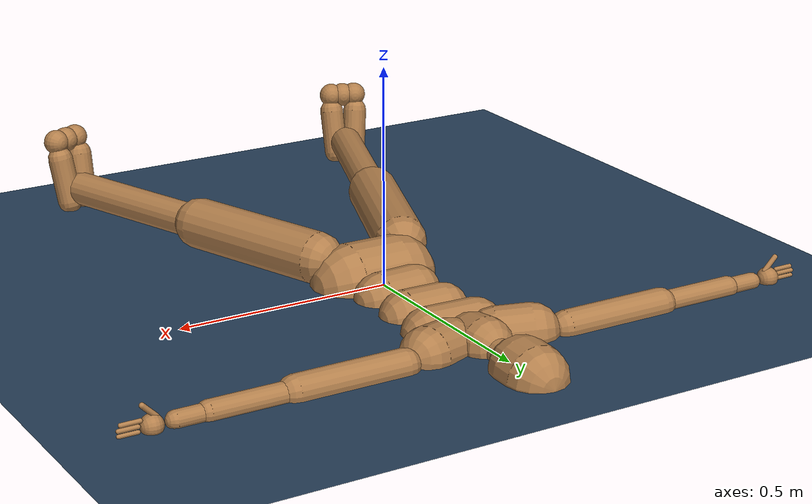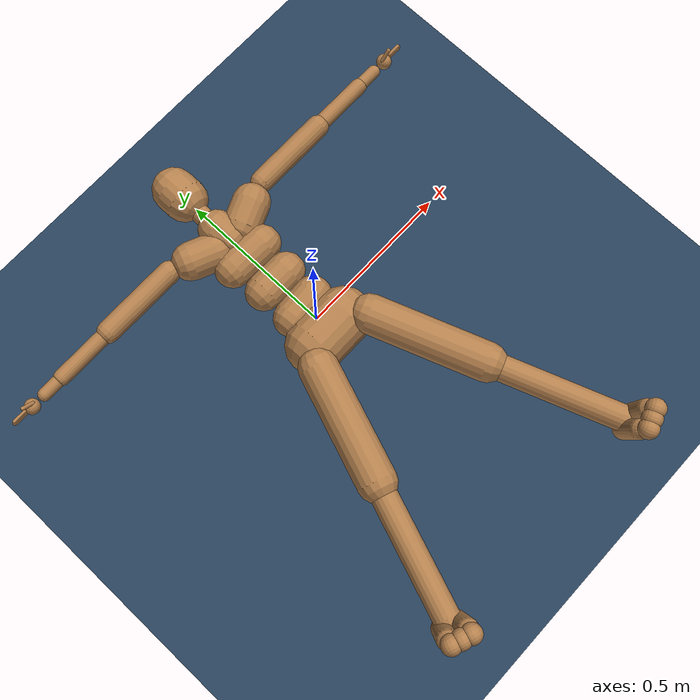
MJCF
<mujoco model="humanoid_CMU">
  <size njmax="500" nconmax="500"/>
  <asset>
    <material name="self" rgba=".7 .5 .3 1"/>
    <texture name="grid" type="2d" builtin="checker" width="512" height="512" rgb1=".1 .2 .3" rgb2=".2 .3 .4"/>
    <material name="grid" texture="grid" texrepeat="1 1" texuniform="true" reflectance=".2"/>
  </asset>

  <default>
    <joint limited="true" solimplimit="0 0.99 0.01" stiffness="0.1" armature=".01" damping="1"/>
    <geom size="0.03 0 0" condim="3" friction="0.7 0.005 0.0001" solref="0.015 1" solimp="0.99 0.99 0.003"/>
    <general ctrllimited="true" ctrlrange="-1 1"/>
    <default class="humanoid">
      <geom type="capsule" material="self" group="2"/>
      <default class="stiff_medium">
        <joint stiffness="10" damping="2"/>
      </default>
      <default class="stiff_medium_higher">
        <joint stiffness="50" damping="4"/>
      </default>
      <default class="stiff_high">
        <joint stiffness="200" damping="5"/>
      </default>
      <default class="sensor_site">
        <site type="sphere" size="0.01" group="4" rgba="1 0 0 .5"/>
      </default>
    </default>
  </default>

  <worldbody>
    <geom name="floor" size="0 0 .05" type="plane" material="grid" condim="3"/>
    <light name="tracking_light" pos="0 0 7" dir="0 0 -1" mode="trackcom"/>
    <camera name="back" pos="0 3 1.4" xyaxes="-1 0 0 0 -1 2" mode="trackcom"/>
    <camera name="side" pos="-3 0 1.4" xyaxes="0 -1 0 1 0 2" mode="trackcom"/>
    <camera name="front_side" pos="-2 -2 0.5" xyaxes="0.5 -0.5 0 0.1 0.1 1" mode="trackcom"/>
    <camera name="float_far" pos="-3 0 1.5" xyaxes="0 -1 0 .5 0 1" mode="trackcom" fovy="75"/>
    <camera name="float_far_flip" pos="3 0 1.5" xyaxes="0 1 0 -.5 0 1" mode="trackcom" fovy="75"/>
    <body name="root" childclass="humanoid">
      <freejoint name="root"/>
      <camera name="bodycam" pos="0 .3 .1" xyaxes="-1 0 0 0 1 0" fovy="80"/>
      <site name="root" size=".01" rgba="0.5 0.5 0.5 0"/>
      <geom name="root_geom" size="0.09 0.06" pos="0 -0.05 0" quat="1 0 -1 0"/>
      <body name="lhipjoint">
        <geom name="lhipjoint" size="0.008 0.02187363" pos="0.0509685 -0.0459037 0.024723" quat="0.5708 -0.566602 -0.594264 0"/>
        <body name="lfemur" pos="0.101937 -0.0918074 0.0494461" quat="0.984808 0 0 0.173648">
          <joint name="lfemurrz" axis="0 0 1" range="-1.0472 1.22173" class="stiff_medium"/>
          <joint name="lfemurry" axis="0 1 0" range="-1.22173 1.22173" class="stiff_medium"/>
          <joint name="lfemurrx" axis="1 0 0" range="-2.79253 0.349066" class="stiff_medium"/>
          <geom name="lfemur" size="0.06 0.1822257" pos="-5.0684e-08 -0.202473 0" quat="0.696364 -0.696364 -0.122788 -0.122788"/>
          <body name="ltibia" pos="-1.01368e-07 -0.404945 0">
            <joint name="ltibiarx" axis="1 0 0" range="0.01 2.96706"/>
            <geom name="ltibia" size="0.04 0.1825614" pos="-5.34516e-08 -0.202846 0" quat="0.696364 -0.696364 -0.122788 -0.122788"/>
            <body name="lfoot" pos="-1.06903e-07 -0.405693 0" quat="0.707107 -0.707107 0 0">
              <site name='lfoot_touch' type='capsule' pos='0.0 0.02 -0.025' size='0.025 0.01' zaxis="1 0 0" class="sensor_site"/>
              <joint name="lfootrz" axis="0 0 1" range="-1.22173 0.349066" class="stiff_medium"/>
              <joint name="lfootrx" axis="1 0 0" range="-0.785398 1.5708" class="stiff_medium"/>
              <geom name="lfoot" size="0.03 0.0543914" pos="-0.0269999975006 -0.0231859 -0.0113878" quat="0.76725516 -0.64051114  0.02306487 -0.02306583"/>
              <geom name="lfoot_ch" size="0.03 0.0543914" pos="0.0270000024994 -0.0231859 -0.0113878" quat="0.72887266 -0.59399462 -0.24074283 -0.2407425 "/>
              <body name="ltoes" pos="4.99882e-09 -0.106372 -0.0227756">
                <joint name="ltoesrx" axis="1 0 0" range="-1.5708 0.349066"/>
                <geom name="ltoes0" type="sphere" size="0.03" pos="0 -0.01 -.01"/>
                <geom name="ltoes1" type="sphere" size="0.03" pos=".03 -0.01 -.01"/>
                <geom name="ltoes2" type="sphere" size="0.03" pos="-.03 -0.01 -.01"/>
                <site name='ltoes_touch' type='capsule' pos='0.0 -0.01 -0.02' size='0.025 0.03' zaxis="1 0 0" class="sensor_site"/>
              </body>
            </body>
          </body>
        </body>
      </body>
      <body name="rhipjoint">
        <geom name="rhipjoint" size="0.008 0.02187363" pos="-0.0509685 -0.0459037 0.024723" quat="0.574856 -0.547594 0.608014 0"/>
        <body name="rfemur" pos="-0.101937 -0.0918074 0.0494461" quat="0.984808 0 0 -0.173648">
          <joint name="rfemurrz" axis="0 0 1" range="-1.22173 1.0472" class="stiff_medium"/>
          <joint name="rfemurry" axis="0 1 0" range="-1.22173 1.22173" class="stiff_medium"/>
          <joint name="rfemurrx" axis="1 0 0" range="-2.79253 0.349066" class="stiff_medium"/>
          <geom name="rfemur" size="0.06 0.1822257" pos="5.35298e-08 -0.202473 0" quat="0.696364 -0.696364 0.122788 0.122788"/>
          <body name="rtibia" pos="1.0706e-07 -0.404945 0">
            <joint name="rtibiarx" axis="1 0 0" range="0.01 2.96706"/>
            <geom name="rtibia" size="0.04 0.1825614" pos="5.36285e-08 -0.202846 0" quat="0.696364 -0.696364 0.122788 0.122788"/>
            <body name="rfoot" pos="1.07257e-07 -0.405693 0" quat="0.707107 -0.707107 0 0">
              <site name='rfoot_touch' type='capsule' pos='0.0 0.02 -0.025' size='0.025 0.01' zaxis="1 0 0" class="sensor_site"/>
              <joint name="rfootrz" axis="0 0 1" range="-0.349066 1.22173" class="stiff_medium"/>
              <joint name="rfootrx" axis="1 0 0" range="-0.785398 1.5708" class="stiff_medium"/>
              <geom name="rfoot" size="0.03 0.0543914" pos="-0.0269999965316 -0.0231859 -0.0113878" quat="0.73520687 -0.58633523 0.24050108 0.24050079"/>
              <geom name="rfoot_ch" size="0.03 0.0543914" pos="0.0270000034684 -0.0231859 -0.0113878" quat="0.77312469 -0.633231 -0.02545846 0.02545836"/>
              <body name="rtoes" pos="6.93672e-09 -0.106372 -0.0227756">
                <joint name="rtoesrx" axis="1 0 0" range="-1.5708 0.349066"/>
                <geom name="rtoes0" type="sphere" size="0.03" pos="0 -0.01 -.01"/>
                <geom name="rtoes1" type="sphere" size="0.03" pos=".03 -0.01 -.01"/>
                <geom name="rtoes2" type="sphere" size="0.03" pos="-.03 -0.01 -.01"/>
                <site name="rtoes_touch" type='capsule' pos='0.0 -0.01 -0.02' size='0.025 0.03' zaxis="1 0 0" class="sensor_site"/>
              </body>
            </body>
          </body>
        </body>
      </body>
      <body name="lowerback">
        <joint name="lowerbackrz" axis="0 0 1" range="-0.523599 0.523599" class="stiff_high"/>
        <joint name="lowerbackry" axis="0 1 0" range="-0.523599 0.523599" class="stiff_high"/>
        <joint name="lowerbackrx" axis="1 0 0" range="-0.349066 0.785398" class="stiff_high"/>
        <geom name="lowerback" size="0.06 0.04540016" pos="0.000282931 0.0566065 -0.00402649" quat="0.70836027 -0.02340173  0.70495373  0.02680827"/>
        <body name="upperback" pos="0.000565862 0.113213 -0.00805298">
          <joint name="upperbackrz" axis="0 0 1" range="-0.523599 0.523599" class="stiff_high"/>
          <joint name="upperbackry" axis="0 1 0" range="-0.523599 0.523599" class="stiff_high"/>
          <joint name="upperbackrx" axis="1 0 0" range="-0.349066 0.785398" class="stiff_high"/>
          <geom name="upperback" size="0.06 0.04542616" pos="0.000256264 0.0567802 0.00046841" quat="0.70869924  0.00451524  0.70549477 -0.00131076"/>
          <body name="thorax" pos="0.000512528 0.11356 0.000936821">
            <joint name="thoraxrz" axis="0 0 1" range="-0.523599 0.523599" class="stiff_high"/>
            <joint name="thoraxry" axis="0 1 0" range="-0.523599 0.523599" class="stiff_high"/>
            <joint name="thoraxrx" axis="1 0 0" range="-0.349066 0.785398" class="stiff_high"/>
            <geom name="thorax" size="0.06 0.0570206" pos="-2.08988e-05 0.0569725 0.00234019" quat="0.70682567  0.01438067  0.70709033 -0.01464533"/>
            <body name="lowerneck" pos="-4.17976e-05 0.113945 0.00468037">
              <joint name="lowerneckrz" axis="0 0 1" range="-0.523599 0.523599" class="stiff_medium"/>
              <joint name="lowerneckry" axis="0 1 0" range="-0.523599 0.523599" class="stiff_medium"/>
              <joint name="lowerneckrx" axis="1 0 0" range="-0.349066 0.785398" class="stiff_medium"/>
              <geom name="lowerneck" size="0.06 0.02279225" pos="-0.00165071 0.0452401 0.00534359" quat="0.66437 0.746906 0.027253 0"/>
              <body name="upperneck" pos="-0.00330143 0.0904801 0.0106872">
                <joint name="upperneckrz" axis="0 0 1" range="-0.523599 0.523599" class="stiff_medium"/>
                <joint name="upperneckry" axis="0 1 0" range="-0.523599 0.523599" class="stiff_medium"/>
                <joint name="upperneckrx" axis="1 0 0" range="-0.349066 0.785398" class="stiff_medium"/>
                <geom name="upperneck" size="0.03 0.0225272" pos="0.000500875 0.0449956 -0.00224644" quat="0.724521 0.68921 -0.00767204 0"/>
                <body name="head" pos="0.00100175 0.0899912 -0.00449288">
                  <camera name="egocentric" xyaxes="-1 0 0 0 1 0" fovy="80"/>
                  <joint name="headrz" axis="0 0 1" range="-0.523599 0.523599" class="stiff_medium"/>
                  <joint name="headry" axis="0 1 0" range="-0.523599 0.523599" class="stiff_medium"/>
                  <joint name="headrx" axis="1 0 0" range="-0.349066 0.785398" class="stiff_medium"/>
                  <geom name="head" size="0.07 0.024104" pos="0.000341465 0.048184 -0.00148117" quat="0.717887 0.696142 -0.00493334 0"/>
                </body>
              </body>
            </body>
            <body name="lclavicle" pos="-4.17976e-05 0.113945 0.00468037">
              <joint name="lclaviclerz" axis="0 0 1" range="0 0.349066" class="stiff_high"/>
              <joint name="lclaviclery" axis="0 1 0" range="-0.349066 0.174533" class="stiff_high"/>
              <geom name="lclavicle" size="0.06 0.03986988" pos="0.0918817 0.0382636 0.00535704" quat="0.674573 0.274789 -0.685158 0"/>
              <body name="lhumerus" pos="0.183763 0.0765273 0.0107141" quat="0.183013 0.683013 -0.683013 0.183013">
                <joint name="lhumerusrz" axis="0 0 1" range="-1.5708 1.5708"/>
                <joint name="lhumerusry" axis="0 1 0" range="-1.5708 1.5708"/>
                <joint name="lhumerusrx" axis="1 0 0" range="-1.0472 1.5708"/>
                <site name="lhumerus_ft" class="sensor_site"/>
                <geom name="lhumerus" size="0.035 0.1245789" pos="0 -0.138421 0" quat="0.612372 -0.612372 0.353553 0.353553"/>
                <body name="lradius" pos="0 -0.276843 0">
                  <joint name="lradiusrx" axis="1 0 0" range="-0.174533 2.96706"/>
                  <geom name="lradius" size="0.025 0.08169111" pos="0 -0.0907679 0" quat="0.612372 -0.612372 0.353553 0.353553"/>
                  <body name="lwrist" pos="0 -0.181536 0" quat="-0.5 0 0.866025 0">
                    <joint name="lwristry" axis="0 1 0" range="0 3.14159"/>
                    <geom name="lwrist" size="0.02 0.03" pos="0 -0.03 0" quat="1.59389e-11 -1.59388e-11 -0.707107 -0.707107"/>
                    <body name="lhand" pos="0 -0.0907676 0">
                      <joint name="lhandrz" axis="0 0 1" range="-0.785398 0.785398"/>
                      <joint name="lhandrx" axis="1 0 0" range="-1.5708 1.5708"/>
                      <site name="lhand_touch" size=".012 0.005 0.015" pos="0 -0.016752 -0.01" quat="1.05531e-11 -1.05529e-11 -0.707107 -0.707107" type="sphere" class="sensor_site"/>
                      <geom name="lhand" size=".024 0.01 0.03" pos="0 -0.016752 0" quat="1.05531e-11 -1.05529e-11 -0.707107 -0.707107" type="sphere"/>
                      <body name="lfingers" pos="0 -0.0351944 0">
                        <joint name="lfingersrx" axis="1 0 0" range="0 1.5708"/>
                        <site name="lfingers_touch" type="box" size="0.023 0.013 0.003" pos="0 -0.042 -0.003" class="sensor_site"/>
                        <geom name="lfinger0" size="0.005 0.02" pos="-.015 -0.025 0" quat="7.07107000e-01 -7.07107000e-01 0 0" />
                        <geom name="lfinger1" size="0.005 0.02" pos="-.004 -0.03 0" quat="7.07107000e-01 -7.07107000e-01 0 0" />
                        <geom name="lfinger2" size="0.0045 0.02" pos=".007 -0.03 0" quat="7.07107000e-01 -7.07107000e-01 0 0" />
                        <geom name="lfinger3" size="0.004 0.02" pos=".016 -0.025 0" quat="7.07107000e-01 -7.07107000e-01 0 0" />
                      </body>
                      <body name="lthumb" pos="-.01 0 0" quat="0.92388 0 0 -0.382683">
                        <joint name="lthumbrz" axis="0 0 1" range="-0.785398 0.785398"/>
                        <joint name="lthumbrx" axis="1 0 0" range="0 1.57"/>
                        <site name="lthumb_touch" type="box" size="0.006 0.013 0.003" pos="0 -0.043 -0.003" class="sensor_site"/>
                        <geom name="lthumb" size="0.006 0.02" pos="0 -0.03 0" quat="4.53059e-11 -4.27268e-11 -0.707107 -0.707107"/>
                      </body>
                    </body>
                  </body>
                </body>
              </body>
            </body>
            <body name="rclavicle" pos="-4.17976e-05 0.113945 0.00468037">
              <joint name="rclaviclerz" axis="0 0 1" range="-0.349066 0" class="stiff_high"/>
              <joint name="rclaviclery" axis="0 1 0" range="-0.174533 0.349066" class="stiff_high"/>
              <geom name="rclavicle" size="0.06 0.03986988" pos="-0.0918817 0.0382636 0.00535704" quat="0.687843 0.27905 0.670077 0"/>
              <body name="rhumerus" pos="-0.183763 0.0765273 0.0107141" quat="0.183013 0.683013 0.683013 -0.183013">
                <joint name="rhumerusrz" axis="0 0 1" range="-1.5708 1.5708"/>
                <joint name="rhumerusry" axis="0 1 0" range="-1.5708 1.5708"/>
                <joint name="rhumerusrx" axis="1 0 0" range="-1.0472 1.5708"/>
                <site name="rhumerus_ft" class="sensor_site"/>
                <geom name="rhumerus" size="0.035 0.1245789" pos="0 -0.138421 0" quat="0.612372 -0.612372 -0.353553 -0.353553"/>
                <body name="rradius" pos="0 -0.276843 0">
                  <joint name="rradiusrx" axis="1 0 0" range="-0.174533 2.96706"/>
                  <geom name="rradius" size="0.025 0.08169111" pos="0 -0.0907679 0" quat="0.61238 -0.612372 -0.353554 -0.353541"/>
                  <body name="rwrist" pos="0 -0.181536 0" quat="-0.5 0 -0.866025 0">
                    <joint name="rwristry" axis="0 1 0" range="-3.14159 0"/>
                    <geom name="rwrist" size="0.02 0.03" pos="0 -0.03 0" quat="1.11127e-05 -1.21227e-06 0.707101 0.707113"/>
                    <body name="rhand" pos="0 -0.0907676 0">
                      <joint name="rhandrz" axis="0 0 1" range="-0.785398 0.785398"/>
                      <joint name="rhandrx" axis="1 0 0" range="-1.5708 1.5708"/>
                      <site name="rhand_touch" size=".012 0.005 0.015" pos="0 -0.016752 -0.01" quat="2.00918e-11 -2.00916e-11 0.707107 0.707107" type="sphere" class="sensor_site"/>
                      <geom name="rhand" size=".024 0.01 .03" pos="0 -0.016752 0" quat="2.00918e-11 -2.00916e-11 0.707107 0.707107" type="sphere"/>
                      <body name="rfingers" pos="0 -0.0351944 0">
                        <joint name="rfingersrx" axis="1 0 0" range="0 1.5708"/>
                        <site name="rfingers_touch" type="box" size="0.023 0.013 0.003" pos="0 -0.042 -0.003" class="sensor_site"/>
                        <geom name="rfinger0" size="0.005 0.02" pos=".015 -0.025 0" quat="7.07107000e-01 -7.07107000e-01 0 0" />
                        <geom name="rfinger1" size="0.005 0.02" pos=".004 -0.03 0" quat="7.07107000e-01 -7.07107000e-01 0 0" />
                        <geom name="rfinger2" size="0.0045 0.02" pos="-.007 -0.03 0" quat="7.07107000e-01 -7.07107000e-01 0 0" />
                        <geom name="rfinger3" size="0.004 0.02" pos="-.016 -0.025 0" quat="7.07107000e-01 -7.07107000e-01 0 0" />
                      </body>
                      <body name="rthumb" pos=".01 0 0" quat="0.92388 0 0 0.382683">
                        <joint name="rthumbrz" axis="0 0 1" range="-0.785398 0.785398"/>
                        <joint name="rthumbrx" axis="1 0 0" range="0 1.57"/>
                        <site name="rthumb_touch" type="box" size="0.006 0.013 0.003" pos="0 -0.043 -0.003" class="sensor_site"/>
                        <geom name="rthumb" size="0.006 0.02" pos="0 -0.03 0" quat="6.21773e-11 -6.35284e-11 0.707107 0.707107"/>
                      </body>
                    </body>
                  </body>
                </body>
              </body>
            </body>
          </body>
        </body>
      </body>
    </body>
  </worldbody>

  <contact>
    <exclude body1="lclavicle" body2="rclavicle"/>
    <exclude body1="lowerneck" body2="lclavicle"/>
    <exclude body1="lowerneck" body2="rclavicle"/>
    <exclude body1="upperneck" body2="lclavicle"/>
    <exclude body1="upperneck" body2="rclavicle"/>
  </contact>

  <actuator>
    <motor name="headrx" joint="headrx" gear="20"/>
    <motor name="headry" joint="headry" gear="20"/>
    <motor name="headrz" joint="headrz" gear="20"/>
    <motor name="lclaviclery" joint="lclaviclery" gear="20"/>
    <motor name="lclaviclerz" joint="lclaviclerz" gear="20"/>
    <motor name="lfemurrx" joint="lfemurrx" gear="120"/>
    <motor name="lfemurry" joint="lfemurry" gear="40"/>
    <motor name="lfemurrz" joint="lfemurrz" gear="40"/>
    <motor name="lfingersrx" joint="lfingersrx" gear="20"/>
    <motor name="lfootrx" joint="lfootrx" gear="20"/>
    <motor name="lfootrz" joint="lfootrz" gear="20"/>
    <motor name="lhandrx" joint="lhandrx" gear="20"/>
    <motor name="lhandrz" joint="lhandrz" gear="20"/>
    <motor name="lhumerusrx" joint="lhumerusrx" gear="40"/>
    <motor name="lhumerusry" joint="lhumerusry" gear="40"/>
    <motor name="lhumerusrz" joint="lhumerusrz" gear="40"/>
    <motor name="lowerbackrx" joint="lowerbackrx" gear="40"/>
    <motor name="lowerbackry" joint="lowerbackry" gear="40"/>
    <motor name="lowerbackrz" joint="lowerbackrz" gear="40"/>
    <motor name="lowerneckrx" joint="lowerneckrx" gear="20"/>
    <motor name="lowerneckry" joint="lowerneckry" gear="20"/>
    <motor name="lowerneckrz" joint="lowerneckrz" gear="20"/>
    <motor name="lradiusrx" joint="lradiusrx" gear="40"/>
    <motor name="lthumbrx" joint="lthumbrx" gear="20"/>
    <motor name="lthumbrz" joint="lthumbrz" gear="20"/>
    <motor name="ltibiarx" joint="ltibiarx" gear="80"/>
    <motor name="ltoesrx" joint="ltoesrx" gear="20"/>
    <motor name="lwristry" joint="lwristry" gear="20"/>
    <motor name="rclaviclery" joint="rclaviclery" gear="20"/>
    <motor name="rclaviclerz" joint="rclaviclerz" gear="20"/>
    <motor name="rfemurrx" joint="rfemurrx" gear="120"/>
    <motor name="rfemurry" joint="rfemurry" gear="40"/>
    <motor name="rfemurrz" joint="rfemurrz" gear="40"/>
    <motor name="rfingersrx" joint="rfingersrx" gear="20"/>
    <motor name="rfootrx" joint="rfootrx" gear="20"/>
    <motor name="rfootrz" joint="rfootrz" gear="20"/>
    <motor name="rhandrx" joint="rhandrx" gear="20"/>
    <motor name="rhandrz" joint="rhandrz" gear="20"/>
    <motor name="rhumerusrx" joint="rhumerusrx" gear="40"/>
    <motor name="rhumerusry" joint="rhumerusry" gear="40"/>
    <motor name="rhumerusrz" joint="rhumerusrz" gear="40"/>
    <motor name="rradiusrx" joint="rradiusrx" gear="40"/>
    <motor name="rthumbrx" joint="rthumbrx" gear="20"/>
    <motor name="rthumbrz" joint="rthumbrz" gear="20"/>
    <motor name="rtibiarx" joint="rtibiarx" gear="80"/>
    <motor name="rtoesrx" joint="rtoesrx" gear="20"/>
    <motor name="rwristry" joint="rwristry" gear="20"/>
    <motor name="thoraxrx" joint="thoraxrx" gear="40"/>
    <motor name="thoraxry" joint="thoraxry" gear="40"/>
    <motor name="thoraxrz" joint="thoraxrz" gear="40"/>
    <motor name="upperbackrx" joint="upperbackrx" gear="40"/>
    <motor name="upperbackry" joint="upperbackry" gear="40"/>
    <motor name="upperbackrz" joint="upperbackrz" gear="40"/>
    <motor name="upperneckrx" joint="upperneckrx" gear="20"/>
    <motor name="upperneckry" joint="upperneckry" gear="20"/>
    <motor name="upperneckrz" joint="upperneckrz" gear="20"/>
  </actuator>

  <sensor>
    <velocimeter name="sensor_root_veloc" site="root"/>
    <gyro name="sensor_root_gyro" site="root"/>
    <accelerometer name="sensor_root_accel" site="root"/>
    <touch name="sensor_touch_lhand" site="lhand_touch"/>
    <touch name="sensor_touch_lfingers" site="lfingers_touch"/>
    <touch name="sensor_touch_lthumb" site="lthumb_touch"/>
    <touch name="sensor_touch_rhand" site="rhand_touch"/>
    <touch name="sensor_touch_rfingers" site="rfingers_touch"/>
    <touch name="sensor_touch_rthumb" site="rthumb_touch"/>
    <touch name="sensor_touch_ltoes" site="ltoes_touch"/>
    <touch name="sensor_touch_rtoes" site="rtoes_touch"/>
    <touch name="sensor_touch_rfoot" site="rfoot_touch"/>
    <touch name="sensor_touch_lfoot" site="lfoot_touch"/>
    <torque name="sensor_torque_lhumerus" site="lhumerus_ft"/>
    <torque name="sensor_torque_rhumerus" site="rhumerus_ft"/>
  </sensor>

</mujoco>
